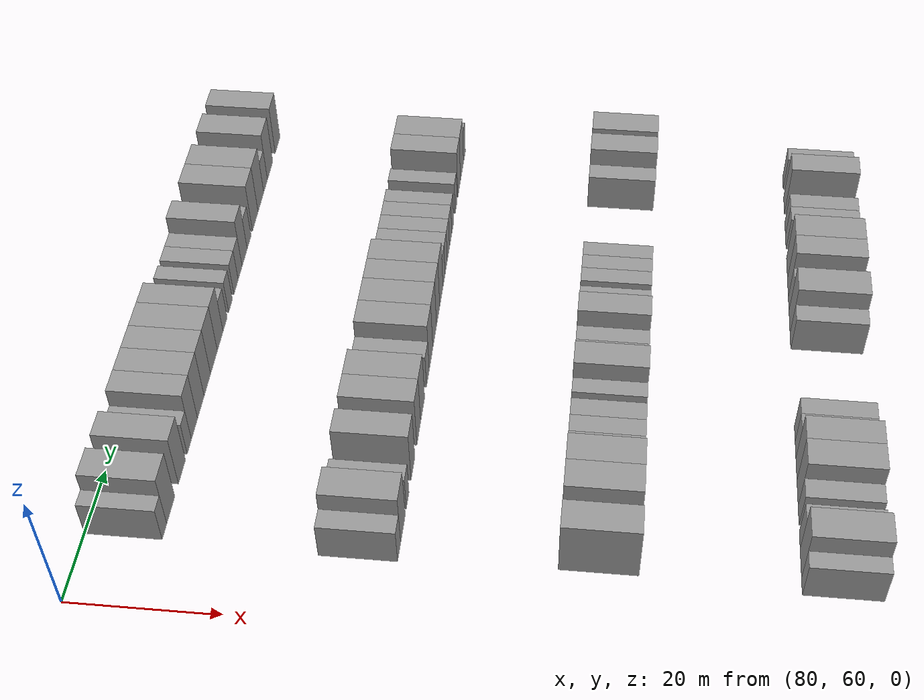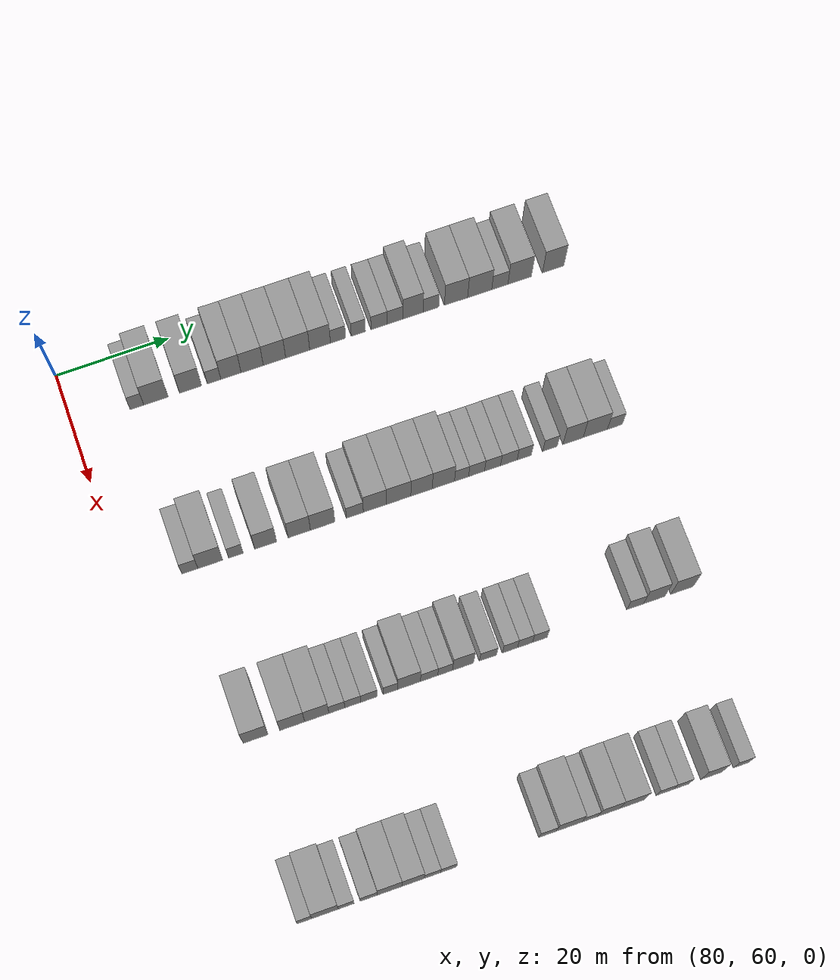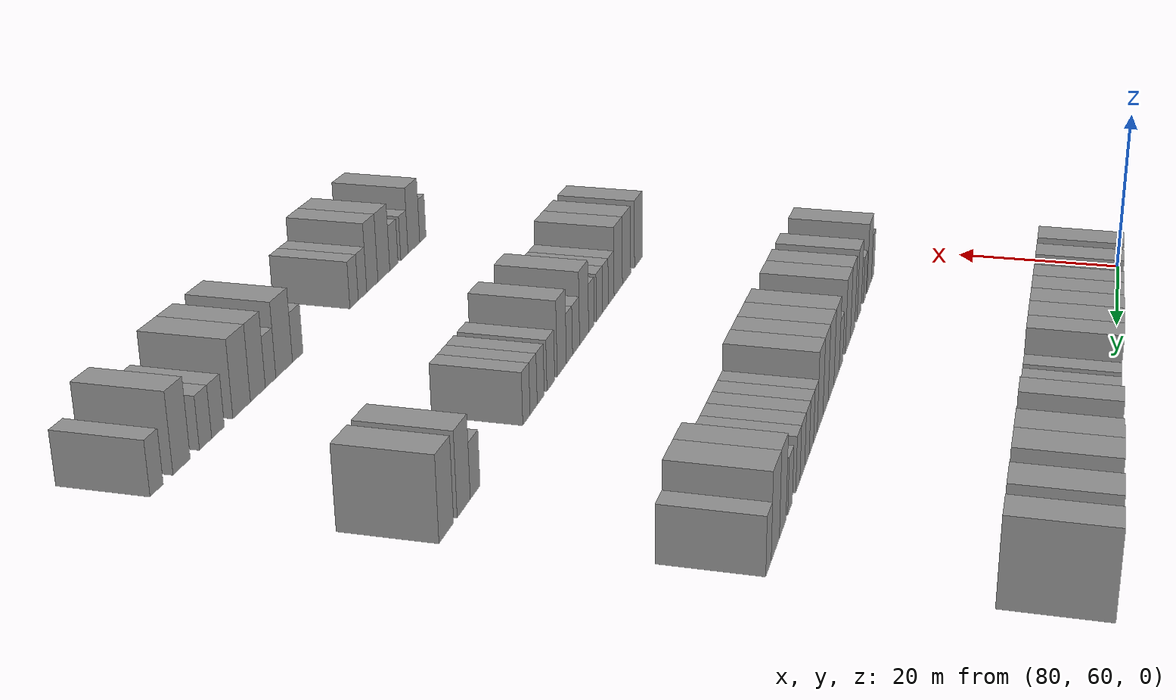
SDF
<sdf version="1.6">
 <world name="default">
  <model name="building_616">
   <static>1</static>
   <pose>85.0000 71.2811 0 0.000000 0.000000 0.000000</pose>
   <link name="link">
    <pose>0 0 3.00 0 0 0</pose>
    <collision name="collision"><geometry><box><size>10.0000 2.4149 6.0000</size></box></geometry></collision>
    <visual name="visual">
     <cast_shadows>0</cast_shadows>
     <geometry><box><size>10.0000 2.4149 6.0000</size></box></geometry>
     <material>
      <script>
       <uri>model://grey_wall/materials/scripts</uri>
       <uri>model://grey_wall/materials/textures</uri>
       <name>vrc/grey_wall</name>
      </script>
     </material>
    </visual>
   </link>
  </model>
  <model name="building_617">
   <static>1</static>
   <pose>85.0000 74.6415 0 0.000000 0.000000 0.000000</pose>
   <link name="link">
    <pose>0 0 4.50 0 0 0</pose>
    <collision name="collision"><geometry><box><size>10.0000 4.3059 9.0000</size></box></geometry></collision>
    <visual name="visual">
     <cast_shadows>0</cast_shadows>
     <geometry><box><size>10.0000 4.3059 9.0000</size></box></geometry>
     <material>
      <script>
       <uri>model://grey_wall/materials/scripts</uri>
       <uri>model://grey_wall/materials/textures</uri>
       <name>vrc/grey_wall</name>
      </script>
     </material>
    </visual>
   </link>
  </model>
  <model name="building_618">
   <static>1</static>
   <pose>85.0000 80.7590 0 0.000000 0.000000 0.000000</pose>
   <link name="link">
    <pose>0 0 4.50 0 0 0</pose>
    <collision name="collision"><geometry><box><size>10.0000 3.9290 9.0000</size></box></geometry></collision>
    <visual name="visual">
     <cast_shadows>0</cast_shadows>
     <geometry><box><size>10.0000 3.9290 9.0000</size></box></geometry>
     <material>
      <script>
       <uri>model://grey_wall/materials/scripts</uri>
       <uri>model://grey_wall/materials/textures</uri>
       <name>vrc/grey_wall</name>
      </script>
     </material>
    </visual>
   </link>
  </model>
  <model name="building_619">
   <static>1</static>
   <pose>85.0000 84.9312 0 0.000000 0.000000 0.000000</pose>
   <link name="link">
    <pose>0 0 3.00 0 0 0</pose>
    <collision name="collision"><geometry><box><size>10.0000 2.4154 6.0000</size></box></geometry></collision>
    <visual name="visual">
     <cast_shadows>0</cast_shadows>
     <geometry><box><size>10.0000 2.4154 6.0000</size></box></geometry>
     <material>
      <script>
       <uri>model://grey_wall/materials/scripts</uri>
       <uri>model://grey_wall/materials/textures</uri>
       <name>vrc/grey_wall</name>
      </script>
     </material>
    </visual>
   </link>
  </model>
  <model name="building_620">
   <static>1</static>
   <pose>85.0000 87.9405 0 0.000000 0.000000 0.000000</pose>
   <link name="link">
    <pose>0 0 4.50 0 0 0</pose>
    <collision name="collision"><geometry><box><size>10.0000 3.6033 9.0000</size></box></geometry></collision>
    <visual name="visual">
     <cast_shadows>0</cast_shadows>
     <geometry><box><size>10.0000 3.6033 9.0000</size></box></geometry>
     <material>
      <script>
       <uri>model://grey_wall/materials/scripts</uri>
       <uri>model://grey_wall/materials/textures</uri>
       <name>vrc/grey_wall</name>
      </script>
     </material>
    </visual>
   </link>
  </model>
  <model name="building_621">
   <static>1</static>
   <pose>85.0000 91.7207 0 0.000000 0.000000 0.000000</pose>
   <link name="link">
    <pose>0 0 4.50 0 0 0</pose>
    <collision name="collision"><geometry><box><size>10.0000 3.9570 9.0000</size></box></geometry></collision>
    <visual name="visual">
     <cast_shadows>0</cast_shadows>
     <geometry><box><size>10.0000 3.9570 9.0000</size></box></geometry>
     <material>
      <script>
       <uri>model://grey_wall/materials/scripts</uri>
       <uri>model://grey_wall/materials/textures</uri>
       <name>vrc/grey_wall</name>
      </script>
     </material>
    </visual>
   </link>
  </model>
  <model name="building_622">
   <static>1</static>
   <pose>85.0000 95.6966 0 0.000000 0.000000 0.000000</pose>
   <link name="link">
    <pose>0 0 4.50 0 0 0</pose>
    <collision name="collision"><geometry><box><size>10.0000 3.9948 9.0000</size></box></geometry></collision>
    <visual name="visual">
     <cast_shadows>0</cast_shadows>
     <geometry><box><size>10.0000 3.9948 9.0000</size></box></geometry>
     <material>
      <script>
       <uri>model://grey_wall/materials/scripts</uri>
       <uri>model://grey_wall/materials/textures</uri>
       <name>vrc/grey_wall</name>
      </script>
     </material>
    </visual>
   </link>
  </model>
  <model name="building_623">
   <static>1</static>
   <pose>85.0000 99.8428 0 0.000000 0.000000 0.000000</pose>
   <link name="link">
    <pose>0 0 4.50 0 0 0</pose>
    <collision name="collision"><geometry><box><size>10.0000 4.2977 9.0000</size></box></geometry></collision>
    <visual name="visual">
     <cast_shadows>0</cast_shadows>
     <geometry><box><size>10.0000 4.2977 9.0000</size></box></geometry>
     <material>
      <script>
       <uri>model://grey_wall/materials/scripts</uri>
       <uri>model://grey_wall/materials/textures</uri>
       <name>vrc/grey_wall</name>
      </script>
     </material>
    </visual>
   </link>
  </model>
  <model name="building_624">
   <static>1</static>
   <pose>85.0000 103.8436 0 0.000000 0.000000 0.000000</pose>
   <link name="link">
    <pose>0 0 4.50 0 0 0</pose>
    <collision name="collision"><geometry><box><size>10.0000 3.7039 9.0000</size></box></geometry></collision>
    <visual name="visual">
     <cast_shadows>0</cast_shadows>
     <geometry><box><size>10.0000 3.7039 9.0000</size></box></geometry>
     <material>
      <script>
       <uri>model://grey_wall/materials/scripts</uri>
       <uri>model://grey_wall/materials/textures</uri>
       <name>vrc/grey_wall</name>
      </script>
     </material>
    </visual>
   </link>
  </model>
  <model name="building_625">
   <static>1</static>
   <pose>85.0000 107.0661 0 0.000000 0.000000 0.000000</pose>
   <link name="link">
    <pose>0 0 3.00 0 0 0</pose>
    <collision name="collision"><geometry><box><size>10.0000 2.7411 6.0000</size></box></geometry></collision>
    <visual name="visual">
     <cast_shadows>0</cast_shadows>
     <geometry><box><size>10.0000 2.7411 6.0000</size></box></geometry>
     <material>
      <script>
       <uri>model://grey_wall/materials/scripts</uri>
       <uri>model://grey_wall/materials/textures</uri>
       <name>vrc/grey_wall</name>
      </script>
     </material>
    </visual>
   </link>
  </model>
  <model name="building_626">
   <static>1</static>
   <pose>85.0000 110.7178 0 0.000000 0.000000 0.000000</pose>
   <link name="link">
    <pose>0 0 3.00 0 0 0</pose>
    <collision name="collision"><geometry><box><size>10.0000 2.5623 6.0000</size></box></geometry></collision>
    <visual name="visual">
     <cast_shadows>0</cast_shadows>
     <geometry><box><size>10.0000 2.5623 6.0000</size></box></geometry>
     <material>
      <script>
       <uri>model://grey_wall/materials/scripts</uri>
       <uri>model://grey_wall/materials/textures</uri>
       <name>vrc/grey_wall</name>
      </script>
     </material>
    </visual>
   </link>
  </model>
  <model name="building_627">
   <static>1</static>
   <pose>85.0000 114.4735 0 0.000000 0.000000 0.000000</pose>
   <link name="link">
    <pose>0 0 3.00 0 0 0</pose>
    <collision name="collision"><geometry><box><size>10.0000 2.9490 6.0000</size></box></geometry></collision>
    <visual name="visual">
     <cast_shadows>0</cast_shadows>
     <geometry><box><size>10.0000 2.9490 6.0000</size></box></geometry>
     <material>
      <script>
       <uri>model://grey_wall/materials/scripts</uri>
       <uri>model://grey_wall/materials/textures</uri>
       <name>vrc/grey_wall</name>
      </script>
     </material>
    </visual>
   </link>
  </model>
  <model name="building_628">
   <static>1</static>
   <pose>85.0000 117.3416 0 0.000000 0.000000 0.000000</pose>
   <link name="link">
    <pose>0 0 3.00 0 0 0</pose>
    <collision name="collision"><geometry><box><size>10.0000 2.7871 6.0000</size></box></geometry></collision>
    <visual name="visual">
     <cast_shadows>0</cast_shadows>
     <geometry><box><size>10.0000 2.7871 6.0000</size></box></geometry>
     <material>
      <script>
       <uri>model://grey_wall/materials/scripts</uri>
       <uri>model://grey_wall/materials/textures</uri>
       <name>vrc/grey_wall</name>
      </script>
     </material>
    </visual>
   </link>
  </model>
  <model name="building_629">
   <static>1</static>
   <pose>85.0000 120.5587 0 0.000000 0.000000 0.000000</pose>
   <link name="link">
    <pose>0 0 4.50 0 0 0</pose>
    <collision name="collision"><geometry><box><size>10.0000 3.6473 9.0000</size></box></geometry></collision>
    <visual name="visual">
     <cast_shadows>0</cast_shadows>
     <geometry><box><size>10.0000 3.6473 9.0000</size></box></geometry>
     <material>
      <script>
       <uri>model://grey_wall/materials/scripts</uri>
       <uri>model://grey_wall/materials/textures</uri>
       <name>vrc/grey_wall</name>
      </script>
     </material>
    </visual>
   </link>
  </model>
  <model name="building_630">
   <static>1</static>
   <pose>85.0000 123.8173 0 0.000000 0.000000 0.000000</pose>
   <link name="link">
    <pose>0 0 3.00 0 0 0</pose>
    <collision name="collision"><geometry><box><size>10.0000 2.8698 6.0000</size></box></geometry></collision>
    <visual name="visual">
     <cast_shadows>0</cast_shadows>
     <geometry><box><size>10.0000 2.8698 6.0000</size></box></geometry>
     <material>
      <script>
       <uri>model://grey_wall/materials/scripts</uri>
       <uri>model://grey_wall/materials/textures</uri>
       <name>vrc/grey_wall</name>
      </script>
     </material>
    </visual>
   </link>
  </model>
  <model name="building_631">
   <static>1</static>
   <pose>85.0000 128.3548 0 0.000000 0.000000 0.000000</pose>
   <link name="link">
    <pose>0 0 4.50 0 0 0</pose>
    <collision name="collision"><geometry><box><size>10.0000 4.2053 9.0000</size></box></geometry></collision>
    <visual name="visual">
     <cast_shadows>0</cast_shadows>
     <geometry><box><size>10.0000 4.2053 9.0000</size></box></geometry>
     <material>
      <script>
       <uri>model://grey_wall/materials/scripts</uri>
       <uri>model://grey_wall/materials/textures</uri>
       <name>vrc/grey_wall</name>
      </script>
     </material>
    </visual>
   </link>
  </model>
  <model name="building_632">
   <static>1</static>
   <pose>85.0000 132.6540 0 0.000000 0.000000 0.000000</pose>
   <link name="link">
    <pose>0 0 4.50 0 0 0</pose>
    <collision name="collision"><geometry><box><size>10.0000 4.3931 9.0000</size></box></geometry></collision>
    <visual name="visual">
     <cast_shadows>0</cast_shadows>
     <geometry><box><size>10.0000 4.3931 9.0000</size></box></geometry>
     <material>
      <script>
       <uri>model://grey_wall/materials/scripts</uri>
       <uri>model://grey_wall/materials/textures</uri>
       <name>vrc/grey_wall</name>
      </script>
     </material>
    </visual>
   </link>
  </model>
  <model name="building_633">
   <static>1</static>
   <pose>85.0000 136.3234 0 0.000000 0.000000 0.000000</pose>
   <link name="link">
    <pose>0 0 3.00 0 0 0</pose>
    <collision name="collision"><geometry><box><size>10.0000 2.9456 6.0000</size></box></geometry></collision>
    <visual name="visual">
     <cast_shadows>0</cast_shadows>
     <geometry><box><size>10.0000 2.9456 6.0000</size></box></geometry>
     <material>
      <script>
       <uri>model://grey_wall/materials/scripts</uri>
       <uri>model://grey_wall/materials/textures</uri>
       <name>vrc/grey_wall</name>
      </script>
     </material>
    </visual>
   </link>
  </model>
  <model name="building_634">
   <static>1</static>
   <pose>85.0000 139.9516 0 0.000000 0.000000 0.000000</pose>
   <link name="link">
    <pose>0 0 4.50 0 0 0</pose>
    <collision name="collision"><geometry><box><size>10.0000 4.3108 9.0000</size></box></geometry></collision>
    <visual name="visual">
     <cast_shadows>0</cast_shadows>
     <geometry><box><size>10.0000 4.3108 9.0000</size></box></geometry>
     <material>
      <script>
       <uri>model://grey_wall/materials/scripts</uri>
       <uri>model://grey_wall/materials/textures</uri>
       <name>vrc/grey_wall</name>
      </script>
     </material>
    </visual>
   </link>
  </model>
  <model name="building_635">
   <static>1</static>
   <pose>85.0000 146.0807 0 0.000000 0.000000 0.000000</pose>
   <link name="link">
    <pose>0 0 4.50 0 0 0</pose>
    <collision name="collision"><geometry><box><size>10.0000 3.9475 9.0000</size></box></geometry></collision>
    <visual name="visual">
     <cast_shadows>0</cast_shadows>
     <geometry><box><size>10.0000 3.9475 9.0000</size></box></geometry>
     <material>
      <script>
       <uri>model://grey_wall/materials/scripts</uri>
       <uri>model://grey_wall/materials/textures</uri>
       <name>vrc/grey_wall</name>
      </script>
     </material>
    </visual>
   </link>
  </model>
  <model name="building_849">
   <static>1</static>
   <pose>115.0000 70.9228 0 0.000000 0.000000 0.000000</pose>
   <link name="link">
    <pose>0 0 3.00 0 0 0</pose>
    <collision name="collision"><geometry><box><size>10.0000 2.7869 6.0000</size></box></geometry></collision>
    <visual name="visual">
     <cast_shadows>0</cast_shadows>
     <geometry><box><size>10.0000 2.7869 6.0000</size></box></geometry>
     <material>
      <script>
       <uri>model://grey_wall/materials/scripts</uri>
       <uri>model://grey_wall/materials/textures</uri>
       <name>vrc/grey_wall</name>
      </script>
     </material>
    </visual>
   </link>
  </model>
  <model name="building_850">
   <static>1</static>
   <pose>115.0000 74.4618 0 0.000000 0.000000 0.000000</pose>
   <link name="link">
    <pose>0 0 4.50 0 0 0</pose>
    <collision name="collision"><geometry><box><size>10.0000 4.2910 9.0000</size></box></geometry></collision>
    <visual name="visual">
     <cast_shadows>0</cast_shadows>
     <geometry><box><size>10.0000 4.2910 9.0000</size></box></geometry>
     <material>
      <script>
       <uri>model://grey_wall/materials/scripts</uri>
       <uri>model://grey_wall/materials/textures</uri>
       <name>vrc/grey_wall</name>
      </script>
     </material>
    </visual>
   </link>
  </model>
  <model name="building_851">
   <static>1</static>
   <pose>115.0000 78.8880 0 0.000000 0.000000 0.000000</pose>
   <link name="link">
    <pose>0 0 3.00 0 0 0</pose>
    <collision name="collision"><geometry><box><size>10.0000 2.5614 6.0000</size></box></geometry></collision>
    <visual name="visual">
     <cast_shadows>0</cast_shadows>
     <geometry><box><size>10.0000 2.5614 6.0000</size></box></geometry>
     <material>
      <script>
       <uri>model://grey_wall/materials/scripts</uri>
       <uri>model://grey_wall/materials/textures</uri>
       <name>vrc/grey_wall</name>
      </script>
     </material>
    </visual>
   </link>
  </model>
  <model name="building_852">
   <static>1</static>
   <pose>115.0000 84.0774 0 0.000000 0.000000 0.000000</pose>
   <link name="link">
    <pose>0 0 4.50 0 0 0</pose>
    <collision name="collision"><geometry><box><size>10.0000 3.8174 9.0000</size></box></geometry></collision>
    <visual name="visual">
     <cast_shadows>0</cast_shadows>
     <geometry><box><size>10.0000 3.8174 9.0000</size></box></geometry>
     <material>
      <script>
       <uri>model://grey_wall/materials/scripts</uri>
       <uri>model://grey_wall/materials/textures</uri>
       <name>vrc/grey_wall</name>
      </script>
     </material>
    </visual>
   </link>
  </model>
  <model name="building_853">
   <static>1</static>
   <pose>115.0000 89.9340 0 0.000000 0.000000 0.000000</pose>
   <link name="link">
    <pose>0 0 4.50 0 0 0</pose>
    <collision name="collision"><geometry><box><size>10.0000 3.8958 9.0000</size></box></geometry></collision>
    <visual name="visual">
     <cast_shadows>0</cast_shadows>
     <geometry><box><size>10.0000 3.8958 9.0000</size></box></geometry>
     <material>
      <script>
       <uri>model://grey_wall/materials/scripts</uri>
       <uri>model://grey_wall/materials/textures</uri>
       <name>vrc/grey_wall</name>
      </script>
     </material>
    </visual>
   </link>
  </model>
  <model name="building_854">
   <static>1</static>
   <pose>115.0000 94.0223 0 0.000000 0.000000 0.000000</pose>
   <link name="link">
    <pose>0 0 4.50 0 0 0</pose>
    <collision name="collision"><geometry><box><size>10.0000 4.2808 9.0000</size></box></geometry></collision>
    <visual name="visual">
     <cast_shadows>0</cast_shadows>
     <geometry><box><size>10.0000 4.2808 9.0000</size></box></geometry>
     <material>
      <script>
       <uri>model://grey_wall/materials/scripts</uri>
       <uri>model://grey_wall/materials/textures</uri>
       <name>vrc/grey_wall</name>
      </script>
     </material>
    </visual>
   </link>
  </model>
  <model name="building_855">
   <static>1</static>
   <pose>115.0000 99.6557 0 0.000000 0.000000 0.000000</pose>
   <link name="link">
    <pose>0 0 3.00 0 0 0</pose>
    <collision name="collision"><geometry><box><size>10.0000 2.9859 6.0000</size></box></geometry></collision>
    <visual name="visual">
     <cast_shadows>0</cast_shadows>
     <geometry><box><size>10.0000 2.9859 6.0000</size></box></geometry>
     <material>
      <script>
       <uri>model://grey_wall/materials/scripts</uri>
       <uri>model://grey_wall/materials/textures</uri>
       <name>vrc/grey_wall</name>
      </script>
     </material>
    </visual>
   </link>
  </model>
  <model name="building_856">
   <static>1</static>
   <pose>115.0000 103.1845 0 0.000000 0.000000 0.000000</pose>
   <link name="link">
    <pose>0 0 4.50 0 0 0</pose>
    <collision name="collision"><geometry><box><size>10.0000 4.0718 9.0000</size></box></geometry></collision>
    <visual name="visual">
     <cast_shadows>0</cast_shadows>
     <geometry><box><size>10.0000 4.0718 9.0000</size></box></geometry>
     <material>
      <script>
       <uri>model://grey_wall/materials/scripts</uri>
       <uri>model://grey_wall/materials/textures</uri>
       <name>vrc/grey_wall</name>
      </script>
     </material>
    </visual>
   </link>
  </model>
  <model name="building_857">
   <static>1</static>
   <pose>115.0000 107.3602 0 0.000000 0.000000 0.000000</pose>
   <link name="link">
    <pose>0 0 4.50 0 0 0</pose>
    <collision name="collision"><geometry><box><size>10.0000 4.2795 9.0000</size></box></geometry></collision>
    <visual name="visual">
     <cast_shadows>0</cast_shadows>
     <geometry><box><size>10.0000 4.2795 9.0000</size></box></geometry>
     <material>
      <script>
       <uri>model://grey_wall/materials/scripts</uri>
       <uri>model://grey_wall/materials/textures</uri>
       <name>vrc/grey_wall</name>
      </script>
     </material>
    </visual>
   </link>
  </model>
  <model name="building_858">
   <static>1</static>
   <pose>115.0000 111.3914 0 0.000000 0.000000 0.000000</pose>
   <link name="link">
    <pose>0 0 4.50 0 0 0</pose>
    <collision name="collision"><geometry><box><size>10.0000 3.7830 9.0000</size></box></geometry></collision>
    <visual name="visual">
     <cast_shadows>0</cast_shadows>
     <geometry><box><size>10.0000 3.7830 9.0000</size></box></geometry>
     <material>
      <script>
       <uri>model://grey_wall/materials/scripts</uri>
       <uri>model://grey_wall/materials/textures</uri>
       <name>vrc/grey_wall</name>
      </script>
     </material>
    </visual>
   </link>
  </model>
  <model name="building_859">
   <static>1</static>
   <pose>115.0000 115.2503 0 0.000000 0.000000 0.000000</pose>
   <link name="link">
    <pose>0 0 4.50 0 0 0</pose>
    <collision name="collision"><geometry><box><size>10.0000 3.9346 9.0000</size></box></geometry></collision>
    <visual name="visual">
     <cast_shadows>0</cast_shadows>
     <geometry><box><size>10.0000 3.9346 9.0000</size></box></geometry>
     <material>
      <script>
       <uri>model://grey_wall/materials/scripts</uri>
       <uri>model://grey_wall/materials/textures</uri>
       <name>vrc/grey_wall</name>
      </script>
     </material>
    </visual>
   </link>
  </model>
  <model name="building_860">
   <static>1</static>
   <pose>115.0000 118.4764 0 0.000000 0.000000 0.000000</pose>
   <link name="link">
    <pose>0 0 3.00 0 0 0</pose>
    <collision name="collision"><geometry><box><size>10.0000 2.5176 6.0000</size></box></geometry></collision>
    <visual name="visual">
     <cast_shadows>0</cast_shadows>
     <geometry><box><size>10.0000 2.5176 6.0000</size></box></geometry>
     <material>
      <script>
       <uri>model://grey_wall/materials/scripts</uri>
       <uri>model://grey_wall/materials/textures</uri>
       <name>vrc/grey_wall</name>
      </script>
     </material>
    </visual>
   </link>
  </model>
  <model name="building_861">
   <static>1</static>
   <pose>115.0000 121.1455 0 0.000000 0.000000 0.000000</pose>
   <link name="link">
    <pose>0 0 3.00 0 0 0</pose>
    <collision name="collision"><geometry><box><size>10.0000 2.8207 6.0000</size></box></geometry></collision>
    <visual name="visual">
     <cast_shadows>0</cast_shadows>
     <geometry><box><size>10.0000 2.8207 6.0000</size></box></geometry>
     <material>
      <script>
       <uri>model://grey_wall/materials/scripts</uri>
       <uri>model://grey_wall/materials/textures</uri>
       <name>vrc/grey_wall</name>
      </script>
     </material>
    </visual>
   </link>
  </model>
  <model name="building_862">
   <static>1</static>
   <pose>115.0000 123.9806 0 0.000000 0.000000 0.000000</pose>
   <link name="link">
    <pose>0 0 3.00 0 0 0</pose>
    <collision name="collision"><geometry><box><size>10.0000 2.8494 6.0000</size></box></geometry></collision>
    <visual name="visual">
     <cast_shadows>0</cast_shadows>
     <geometry><box><size>10.0000 2.8494 6.0000</size></box></geometry>
     <material>
      <script>
       <uri>model://grey_wall/materials/scripts</uri>
       <uri>model://grey_wall/materials/textures</uri>
       <name>vrc/grey_wall</name>
      </script>
     </material>
    </visual>
   </link>
  </model>
  <model name="building_863">
   <static>1</static>
   <pose>115.0000 126.8814 0 0.000000 0.000000 0.000000</pose>
   <link name="link">
    <pose>0 0 3.00 0 0 0</pose>
    <collision name="collision"><geometry><box><size>10.0000 2.9522 6.0000</size></box></geometry></collision>
    <visual name="visual">
     <cast_shadows>0</cast_shadows>
     <geometry><box><size>10.0000 2.9522 6.0000</size></box></geometry>
     <material>
      <script>
       <uri>model://grey_wall/materials/scripts</uri>
       <uri>model://grey_wall/materials/textures</uri>
       <name>vrc/grey_wall</name>
      </script>
     </material>
    </visual>
   </link>
  </model>
  <model name="building_864">
   <static>1</static>
   <pose>115.0000 129.6280 0 0.000000 0.000000 0.000000</pose>
   <link name="link">
    <pose>0 0 3.00 0 0 0</pose>
    <collision name="collision"><geometry><box><size>10.0000 2.5409 6.0000</size></box></geometry></collision>
    <visual name="visual">
     <cast_shadows>0</cast_shadows>
     <geometry><box><size>10.0000 2.5409 6.0000</size></box></geometry>
     <material>
      <script>
       <uri>model://grey_wall/materials/scripts</uri>
       <uri>model://grey_wall/materials/textures</uri>
       <name>vrc/grey_wall</name>
      </script>
     </material>
    </visual>
   </link>
  </model>
  <model name="building_865">
   <static>1</static>
   <pose>115.0000 134.2142 0 0.000000 0.000000 0.000000</pose>
   <link name="link">
    <pose>0 0 3.00 0 0 0</pose>
    <collision name="collision"><geometry><box><size>10.0000 2.6315 6.0000</size></box></geometry></collision>
    <visual name="visual">
     <cast_shadows>0</cast_shadows>
     <geometry><box><size>10.0000 2.6315 6.0000</size></box></geometry>
     <material>
      <script>
       <uri>model://grey_wall/materials/scripts</uri>
       <uri>model://grey_wall/materials/textures</uri>
       <name>vrc/grey_wall</name>
      </script>
     </material>
    </visual>
   </link>
  </model>
  <model name="building_866">
   <static>1</static>
   <pose>115.0000 138.3422 0 0.000000 0.000000 0.000000</pose>
   <link name="link">
    <pose>0 0 4.50 0 0 0</pose>
    <collision name="collision"><geometry><box><size>10.0000 3.6245 9.0000</size></box></geometry></collision>
    <visual name="visual">
     <cast_shadows>0</cast_shadows>
     <geometry><box><size>10.0000 3.6245 9.0000</size></box></geometry>
     <material>
      <script>
       <uri>model://grey_wall/materials/scripts</uri>
       <uri>model://grey_wall/materials/textures</uri>
       <name>vrc/grey_wall</name>
      </script>
     </material>
    </visual>
   </link>
  </model>
  <model name="building_867">
   <static>1</static>
   <pose>115.0000 142.3300 0 0.000000 0.000000 0.000000</pose>
   <link name="link">
    <pose>0 0 4.50 0 0 0</pose>
    <collision name="collision"><geometry><box><size>10.0000 4.3512 9.0000</size></box></geometry></collision>
    <visual name="visual">
     <cast_shadows>0</cast_shadows>
     <geometry><box><size>10.0000 4.3512 9.0000</size></box></geometry>
     <material>
      <script>
       <uri>model://grey_wall/materials/scripts</uri>
       <uri>model://grey_wall/materials/textures</uri>
       <name>vrc/grey_wall</name>
      </script>
     </material>
    </visual>
   </link>
  </model>
  <model name="building_868">
   <static>1</static>
   <pose>115.0000 145.8648 0 0.000000 0.000000 0.000000</pose>
   <link name="link">
    <pose>0 0 3.00 0 0 0</pose>
    <collision name="collision"><geometry><box><size>10.0000 2.7183 6.0000</size></box></geometry></collision>
    <visual name="visual">
     <cast_shadows>0</cast_shadows>
     <geometry><box><size>10.0000 2.7183 6.0000</size></box></geometry>
     <material>
      <script>
       <uri>model://grey_wall/materials/scripts</uri>
       <uri>model://grey_wall/materials/textures</uri>
       <name>vrc/grey_wall</name>
      </script>
     </material>
    </visual>
   </link>
  </model>
  <model name="building_1089">
   <static>1</static>
   <pose>145.0000 72.3151 0 0.000000 0.000000 0.000000</pose>
   <link name="link">
    <pose>0 0 4.50 0 0 0</pose>
    <collision name="collision"><geometry><box><size>10.0000 4.2190 9.0000</size></box></geometry></collision>
    <visual name="visual">
     <cast_shadows>0</cast_shadows>
     <geometry><box><size>10.0000 4.2190 9.0000</size></box></geometry>
     <material>
      <script>
       <uri>model://grey_wall/materials/scripts</uri>
       <uri>model://grey_wall/materials/textures</uri>
       <name>vrc/grey_wall</name>
      </script>
     </material>
    </visual>
   </link>
  </model>
  <model name="building_1090">
   <static>1</static>
   <pose>145.0000 78.5475 0 0.000000 0.000000 0.000000</pose>
   <link name="link">
    <pose>0 0 4.50 0 0 0</pose>
    <collision name="collision"><geometry><box><size>10.0000 4.2457 9.0000</size></box></geometry></collision>
    <visual name="visual">
     <cast_shadows>0</cast_shadows>
     <geometry><box><size>10.0000 4.2457 9.0000</size></box></geometry>
     <material>
      <script>
       <uri>model://grey_wall/materials/scripts</uri>
       <uri>model://grey_wall/materials/textures</uri>
       <name>vrc/grey_wall</name>
      </script>
     </material>
    </visual>
   </link>
  </model>
  <model name="building_1091">
   <static>1</static>
   <pose>145.0000 82.7354 0 0.000000 0.000000 0.000000</pose>
   <link name="link">
    <pose>0 0 4.50 0 0 0</pose>
    <collision name="collision"><geometry><box><size>10.0000 4.1303 9.0000</size></box></geometry></collision>
    <visual name="visual">
     <cast_shadows>0</cast_shadows>
     <geometry><box><size>10.0000 4.1303 9.0000</size></box></geometry>
     <material>
      <script>
       <uri>model://grey_wall/materials/scripts</uri>
       <uri>model://grey_wall/materials/textures</uri>
       <name>vrc/grey_wall</name>
      </script>
     </material>
    </visual>
   </link>
  </model>
  <model name="building_1092">
   <static>1</static>
   <pose>145.0000 86.1641 0 0.000000 0.000000 0.000000</pose>
   <link name="link">
    <pose>0 0 3.00 0 0 0</pose>
    <collision name="collision"><geometry><box><size>10.0000 2.7271 6.0000</size></box></geometry></collision>
    <visual name="visual">
     <cast_shadows>0</cast_shadows>
     <geometry><box><size>10.0000 2.7271 6.0000</size></box></geometry>
     <material>
      <script>
       <uri>model://grey_wall/materials/scripts</uri>
       <uri>model://grey_wall/materials/textures</uri>
       <name>vrc/grey_wall</name>
      </script>
     </material>
    </visual>
   </link>
  </model>
  <model name="building_1093">
   <static>1</static>
   <pose>145.0000 88.8950 0 0.000000 0.000000 0.000000</pose>
   <link name="link">
    <pose>0 0 3.00 0 0 0</pose>
    <collision name="collision"><geometry><box><size>10.0000 2.7347 6.0000</size></box></geometry></collision>
    <visual name="visual">
     <cast_shadows>0</cast_shadows>
     <geometry><box><size>10.0000 2.7347 6.0000</size></box></geometry>
     <material>
      <script>
       <uri>model://grey_wall/materials/scripts</uri>
       <uri>model://grey_wall/materials/textures</uri>
       <name>vrc/grey_wall</name>
      </script>
     </material>
    </visual>
   </link>
  </model>
  <model name="building_1094">
   <static>1</static>
   <pose>145.0000 91.6670 0 0.000000 0.000000 0.000000</pose>
   <link name="link">
    <pose>0 0 3.00 0 0 0</pose>
    <collision name="collision"><geometry><box><size>10.0000 2.8094 6.0000</size></box></geometry></collision>
    <visual name="visual">
     <cast_shadows>0</cast_shadows>
     <geometry><box><size>10.0000 2.8094 6.0000</size></box></geometry>
     <material>
      <script>
       <uri>model://grey_wall/materials/scripts</uri>
       <uri>model://grey_wall/materials/textures</uri>
       <name>vrc/grey_wall</name>
      </script>
     </material>
    </visual>
   </link>
  </model>
  <model name="building_1095">
   <static>1</static>
   <pose>145.0000 95.3277 0 0.000000 0.000000 0.000000</pose>
   <link name="link">
    <pose>0 0 3.00 0 0 0</pose>
    <collision name="collision"><geometry><box><size>10.0000 2.5120 6.0000</size></box></geometry></collision>
    <visual name="visual">
     <cast_shadows>0</cast_shadows>
     <geometry><box><size>10.0000 2.5120 6.0000</size></box></geometry>
     <material>
      <script>
       <uri>model://grey_wall/materials/scripts</uri>
       <uri>model://grey_wall/materials/textures</uri>
       <name>vrc/grey_wall</name>
      </script>
     </material>
    </visual>
   </link>
  </model>
  <model name="building_1096">
   <static>1</static>
   <pose>145.0000 98.5385 0 0.000000 0.000000 0.000000</pose>
   <link name="link">
    <pose>0 0 4.50 0 0 0</pose>
    <collision name="collision"><geometry><box><size>10.0000 3.9097 9.0000</size></box></geometry></collision>
    <visual name="visual">
     <cast_shadows>0</cast_shadows>
     <geometry><box><size>10.0000 3.9097 9.0000</size></box></geometry>
     <material>
      <script>
       <uri>model://grey_wall/materials/scripts</uri>
       <uri>model://grey_wall/materials/textures</uri>
       <name>vrc/grey_wall</name>
      </script>
     </material>
    </visual>
   </link>
  </model>
  <model name="building_1097">
   <static>1</static>
   <pose>145.0000 101.9868 0 0.000000 0.000000 0.000000</pose>
   <link name="link">
    <pose>0 0 3.00 0 0 0</pose>
    <collision name="collision"><geometry><box><size>10.0000 2.9868 6.0000</size></box></geometry></collision>
    <visual name="visual">
     <cast_shadows>0</cast_shadows>
     <geometry><box><size>10.0000 2.9868 6.0000</size></box></geometry>
     <material>
      <script>
       <uri>model://grey_wall/materials/scripts</uri>
       <uri>model://grey_wall/materials/textures</uri>
       <name>vrc/grey_wall</name>
      </script>
     </material>
    </visual>
   </link>
  </model>
  <model name="building_1098">
   <static>1</static>
   <pose>145.0000 104.7466 0 0.000000 0.000000 0.000000</pose>
   <link name="link">
    <pose>0 0 3.00 0 0 0</pose>
    <collision name="collision"><geometry><box><size>10.0000 2.5329 6.0000</size></box></geometry></collision>
    <visual name="visual">
     <cast_shadows>0</cast_shadows>
     <geometry><box><size>10.0000 2.5329 6.0000</size></box></geometry>
     <material>
      <script>
       <uri>model://grey_wall/materials/scripts</uri>
       <uri>model://grey_wall/materials/textures</uri>
       <name>vrc/grey_wall</name>
      </script>
     </material>
    </visual>
   </link>
  </model>
  <model name="building_1099">
   <static>1</static>
   <pose>145.0000 107.8368 0 0.000000 0.000000 0.000000</pose>
   <link name="link">
    <pose>0 0 4.50 0 0 0</pose>
    <collision name="collision"><geometry><box><size>10.0000 3.6474 9.0000</size></box></geometry></collision>
    <visual name="visual">
     <cast_shadows>0</cast_shadows>
     <geometry><box><size>10.0000 3.6474 9.0000</size></box></geometry>
     <material>
      <script>
       <uri>model://grey_wall/materials/scripts</uri>
       <uri>model://grey_wall/materials/textures</uri>
       <name>vrc/grey_wall</name>
      </script>
     </material>
    </visual>
   </link>
  </model>
  <model name="building_1100">
   <static>1</static>
   <pose>145.0000 112.1522 0 0.000000 0.000000 0.000000</pose>
   <link name="link">
    <pose>0 0 3.00 0 0 0</pose>
    <collision name="collision"><geometry><box><size>10.0000 2.9833 6.0000</size></box></geometry></collision>
    <visual name="visual">
     <cast_shadows>0</cast_shadows>
     <geometry><box><size>10.0000 2.9833 6.0000</size></box></geometry>
     <material>
      <script>
       <uri>model://grey_wall/materials/scripts</uri>
       <uri>model://grey_wall/materials/textures</uri>
       <name>vrc/grey_wall</name>
      </script>
     </material>
    </visual>
   </link>
  </model>
  <model name="building_1101">
   <static>1</static>
   <pose>145.0000 115.9627 0 0.000000 0.000000 0.000000</pose>
   <link name="link">
    <pose>0 0 3.00 0 0 0</pose>
    <collision name="collision"><geometry><box><size>10.0000 2.6378 6.0000</size></box></geometry></collision>
    <visual name="visual">
     <cast_shadows>0</cast_shadows>
     <geometry><box><size>10.0000 2.6378 6.0000</size></box></geometry>
     <material>
      <script>
       <uri>model://grey_wall/materials/scripts</uri>
       <uri>model://grey_wall/materials/textures</uri>
       <name>vrc/grey_wall</name>
      </script>
     </material>
    </visual>
   </link>
  </model>
  <model name="building_1102">
   <static>1</static>
   <pose>145.0000 118.5755 0 0.000000 0.000000 0.000000</pose>
   <link name="link">
    <pose>0 0 3.00 0 0 0</pose>
    <collision name="collision"><geometry><box><size>10.0000 2.5877 6.0000</size></box></geometry></collision>
    <visual name="visual">
     <cast_shadows>0</cast_shadows>
     <geometry><box><size>10.0000 2.5877 6.0000</size></box></geometry>
     <material>
      <script>
       <uri>model://grey_wall/materials/scripts</uri>
       <uri>model://grey_wall/materials/textures</uri>
       <name>vrc/grey_wall</name>
      </script>
     </material>
    </visual>
   </link>
  </model>
  <model name="building_1103">
   <static>1</static>
   <pose>145.0000 121.1624 0 0.000000 0.000000 0.000000</pose>
   <link name="link">
    <pose>0 0 3.00 0 0 0</pose>
    <collision name="collision"><geometry><box><size>10.0000 2.5861 6.0000</size></box></geometry></collision>
    <visual name="visual">
     <cast_shadows>0</cast_shadows>
     <geometry><box><size>10.0000 2.5861 6.0000</size></box></geometry>
     <material>
      <script>
       <uri>model://grey_wall/materials/scripts</uri>
       <uri>model://grey_wall/materials/textures</uri>
       <name>vrc/grey_wall</name>
      </script>
     </material>
    </visual>
   </link>
  </model>
  <model name="building_1104">
   <static>1</static>
   <pose>145.0000 137.8683 0 0.000000 0.000000 0.000000</pose>
   <link name="link">
    <pose>0 0 3.00 0 0 0</pose>
    <collision name="collision"><geometry><box><size>10.0000 2.9419 6.0000</size></box></geometry></collision>
    <visual name="visual">
     <cast_shadows>0</cast_shadows>
     <geometry><box><size>10.0000 2.9419 6.0000</size></box></geometry>
     <material>
      <script>
       <uri>model://grey_wall/materials/scripts</uri>
       <uri>model://grey_wall/materials/textures</uri>
       <name>vrc/grey_wall</name>
      </script>
     </material>
    </visual>
   </link>
  </model>
  <model name="building_1105">
   <static>1</static>
   <pose>145.0000 141.2345 0 0.000000 0.000000 0.000000</pose>
   <link name="link">
    <pose>0 0 4.50 0 0 0</pose>
    <collision name="collision"><geometry><box><size>10.0000 3.7904 9.0000</size></box></geometry></collision>
    <visual name="visual">
     <cast_shadows>0</cast_shadows>
     <geometry><box><size>10.0000 3.7904 9.0000</size></box></geometry>
     <material>
      <script>
       <uri>model://grey_wall/materials/scripts</uri>
       <uri>model://grey_wall/materials/textures</uri>
       <name>vrc/grey_wall</name>
      </script>
     </material>
    </visual>
   </link>
  </model>
  <model name="building_1106">
   <static>1</static>
   <pose>145.0000 146.1477 0 0.000000 0.000000 0.000000</pose>
   <link name="link">
    <pose>0 0 4.50 0 0 0</pose>
    <collision name="collision"><geometry><box><size>10.0000 4.0360 9.0000</size></box></geometry></collision>
    <visual name="visual">
     <cast_shadows>0</cast_shadows>
     <geometry><box><size>10.0000 4.0360 9.0000</size></box></geometry>
     <material>
      <script>
       <uri>model://grey_wall/materials/scripts</uri>
       <uri>model://grey_wall/materials/textures</uri>
       <name>vrc/grey_wall</name>
      </script>
     </material>
    </visual>
   </link>
  </model>
  <model name="building_1319">
   <static>1</static>
   <pose>175.0000 70.4771 0 0.000000 0.000000 0.000000</pose>
   <link name="link">
    <pose>0 0 3.00 0 0 0</pose>
    <collision name="collision"><geometry><box><size>10.0000 2.4133 6.0000</size></box></geometry></collision>
    <visual name="visual">
     <cast_shadows>0</cast_shadows>
     <geometry><box><size>10.0000 2.4133 6.0000</size></box></geometry>
     <material>
      <script>
       <uri>model://grey_wall/materials/scripts</uri>
       <uri>model://grey_wall/materials/textures</uri>
       <name>vrc/grey_wall</name>
      </script>
     </material>
    </visual>
   </link>
  </model>
  <model name="building_1320">
   <static>1</static>
   <pose>175.0000 73.8762 0 0.000000 0.000000 0.000000</pose>
   <link name="link">
    <pose>0 0 4.50 0 0 0</pose>
    <collision name="collision"><geometry><box><size>10.0000 4.3850 9.0000</size></box></geometry></collision>
    <visual name="visual">
     <cast_shadows>0</cast_shadows>
     <geometry><box><size>10.0000 4.3850 9.0000</size></box></geometry>
     <material>
      <script>
       <uri>model://grey_wall/materials/scripts</uri>
       <uri>model://grey_wall/materials/textures</uri>
       <name>vrc/grey_wall</name>
      </script>
     </material>
    </visual>
   </link>
  </model>
  <model name="building_1321">
   <static>1</static>
   <pose>175.0000 77.3866 0 0.000000 0.000000 0.000000</pose>
   <link name="link">
    <pose>0 0 3.00 0 0 0</pose>
    <collision name="collision"><geometry><box><size>10.0000 2.6357 6.0000</size></box></geometry></collision>
    <visual name="visual">
     <cast_shadows>0</cast_shadows>
     <geometry><box><size>10.0000 2.6357 6.0000</size></box></geometry>
     <material>
      <script>
       <uri>model://grey_wall/materials/scripts</uri>
       <uri>model://grey_wall/materials/textures</uri>
       <name>vrc/grey_wall</name>
      </script>
     </material>
    </visual>
   </link>
  </model>
  <model name="building_1322">
   <static>1</static>
   <pose>175.0000 81.1559 0 0.000000 0.000000 0.000000</pose>
   <link name="link">
    <pose>0 0 3.00 0 0 0</pose>
    <collision name="collision"><geometry><box><size>10.0000 2.9029 6.0000</size></box></geometry></collision>
    <visual name="visual">
     <cast_shadows>0</cast_shadows>
     <geometry><box><size>10.0000 2.9029 6.0000</size></box></geometry>
     <material>
      <script>
       <uri>model://grey_wall/materials/scripts</uri>
       <uri>model://grey_wall/materials/textures</uri>
       <name>vrc/grey_wall</name>
      </script>
     </material>
    </visual>
   </link>
  </model>
  <model name="building_1323">
   <static>1</static>
   <pose>175.0000 84.6501 0 0.000000 0.000000 0.000000</pose>
   <link name="link">
    <pose>0 0 4.50 0 0 0</pose>
    <collision name="collision"><geometry><box><size>10.0000 4.0855 9.0000</size></box></geometry></collision>
    <visual name="visual">
     <cast_shadows>0</cast_shadows>
     <geometry><box><size>10.0000 4.0855 9.0000</size></box></geometry>
     <material>
      <script>
       <uri>model://grey_wall/materials/scripts</uri>
       <uri>model://grey_wall/materials/textures</uri>
       <name>vrc/grey_wall</name>
      </script>
     </material>
    </visual>
   </link>
  </model>
  <model name="building_1324">
   <static>1</static>
   <pose>175.0000 88.5554 0 0.000000 0.000000 0.000000</pose>
   <link name="link">
    <pose>0 0 4.50 0 0 0</pose>
    <collision name="collision"><geometry><box><size>10.0000 3.7250 9.0000</size></box></geometry></collision>
    <visual name="visual">
     <cast_shadows>0</cast_shadows>
     <geometry><box><size>10.0000 3.7250 9.0000</size></box></geometry>
     <material>
      <script>
       <uri>model://grey_wall/materials/scripts</uri>
       <uri>model://grey_wall/materials/textures</uri>
       <name>vrc/grey_wall</name>
      </script>
     </material>
    </visual>
   </link>
  </model>
  <model name="building_1325">
   <static>1</static>
   <pose>175.0000 91.7970 0 0.000000 0.000000 0.000000</pose>
   <link name="link">
    <pose>0 0 3.00 0 0 0</pose>
    <collision name="collision"><geometry><box><size>10.0000 2.7583 6.0000</size></box></geometry></collision>
    <visual name="visual">
     <cast_shadows>0</cast_shadows>
     <geometry><box><size>10.0000 2.7583 6.0000</size></box></geometry>
     <material>
      <script>
       <uri>model://grey_wall/materials/scripts</uri>
       <uri>model://grey_wall/materials/textures</uri>
       <name>vrc/grey_wall</name>
      </script>
     </material>
    </visual>
   </link>
  </model>
  <model name="building_1326">
   <static>1</static>
   <pose>175.0000 94.5214 0 0.000000 0.000000 0.000000</pose>
   <link name="link">
    <pose>0 0 3.00 0 0 0</pose>
    <collision name="collision"><geometry><box><size>10.0000 2.6905 6.0000</size></box></geometry></collision>
    <visual name="visual">
     <cast_shadows>0</cast_shadows>
     <geometry><box><size>10.0000 2.6905 6.0000</size></box></geometry>
     <material>
      <script>
       <uri>model://grey_wall/materials/scripts</uri>
       <uri>model://grey_wall/materials/textures</uri>
       <name>vrc/grey_wall</name>
      </script>
     </material>
    </visual>
   </link>
  </model>
  <model name="building_1327">
   <static>1</static>
   <pose>175.0000 111.2219 0 0.000000 0.000000 0.000000</pose>
   <link name="link">
    <pose>0 0 3.00 0 0 0</pose>
    <collision name="collision"><geometry><box><size>10.0000 2.9035 6.0000</size></box></geometry></collision>
    <visual name="visual">
     <cast_shadows>0</cast_shadows>
     <geometry><box><size>10.0000 2.9035 6.0000</size></box></geometry>
     <material>
      <script>
       <uri>model://grey_wall/materials/scripts</uri>
       <uri>model://grey_wall/materials/textures</uri>
       <name>vrc/grey_wall</name>
      </script>
     </material>
    </visual>
   </link>
  </model>
  <model name="building_1328">
   <static>1</static>
   <pose>175.0000 114.8919 0 0.000000 0.000000 0.000000</pose>
   <link name="link">
    <pose>0 0 4.50 0 0 0</pose>
    <collision name="collision"><geometry><box><size>10.0000 4.4366 9.0000</size></box></geometry></collision>
    <visual name="visual">
     <cast_shadows>0</cast_shadows>
     <geometry><box><size>10.0000 4.4366 9.0000</size></box></geometry>
     <material>
      <script>
       <uri>model://grey_wall/materials/scripts</uri>
       <uri>model://grey_wall/materials/textures</uri>
       <name>vrc/grey_wall</name>
      </script>
     </material>
    </visual>
   </link>
  </model>
  <model name="building_1329">
   <static>1</static>
   <pose>175.0000 118.4751 0 0.000000 0.000000 0.000000</pose>
   <link name="link">
    <pose>0 0 3.00 0 0 0</pose>
    <collision name="collision"><geometry><box><size>10.0000 2.7298 6.0000</size></box></geometry></collision>
    <visual name="visual">
     <cast_shadows>0</cast_shadows>
     <geometry><box><size>10.0000 2.7298 6.0000</size></box></geometry>
     <material>
      <script>
       <uri>model://grey_wall/materials/scripts</uri>
       <uri>model://grey_wall/materials/textures</uri>
       <name>vrc/grey_wall</name>
      </script>
     </material>
    </visual>
   </link>
  </model>
  <model name="building_1330">
   <static>1</static>
   <pose>175.0000 121.7104 0 0.000000 0.000000 0.000000</pose>
   <link name="link">
    <pose>0 0 4.50 0 0 0</pose>
    <collision name="collision"><geometry><box><size>10.0000 3.7407 9.0000</size></box></geometry></collision>
    <visual name="visual">
     <cast_shadows>0</cast_shadows>
     <geometry><box><size>10.0000 3.7407 9.0000</size></box></geometry>
     <material>
      <script>
       <uri>model://grey_wall/materials/scripts</uri>
       <uri>model://grey_wall/materials/textures</uri>
       <name>vrc/grey_wall</name>
      </script>
     </material>
    </visual>
   </link>
  </model>
  <model name="building_1331">
   <static>1</static>
   <pose>175.0000 125.7102 0 0.000000 0.000000 0.000000</pose>
   <link name="link">
    <pose>0 0 4.50 0 0 0</pose>
    <collision name="collision"><geometry><box><size>10.0000 4.2590 9.0000</size></box></geometry></collision>
    <visual name="visual">
     <cast_shadows>0</cast_shadows>
     <geometry><box><size>10.0000 4.2590 9.0000</size></box></geometry>
     <material>
      <script>
       <uri>model://grey_wall/materials/scripts</uri>
       <uri>model://grey_wall/materials/textures</uri>
       <name>vrc/grey_wall</name>
      </script>
     </material>
    </visual>
   </link>
  </model>
  <model name="building_1332">
   <static>1</static>
   <pose>175.0000 131.2894 0 0.000000 0.000000 0.000000</pose>
   <link name="link">
    <pose>0 0 3.00 0 0 0</pose>
    <collision name="collision"><geometry><box><size>10.0000 2.8993 6.0000</size></box></geometry></collision>
    <visual name="visual">
     <cast_shadows>0</cast_shadows>
     <geometry><box><size>10.0000 2.8993 6.0000</size></box></geometry>
     <material>
      <script>
       <uri>model://grey_wall/materials/scripts</uri>
       <uri>model://grey_wall/materials/textures</uri>
       <name>vrc/grey_wall</name>
      </script>
     </material>
    </visual>
   </link>
  </model>
  <model name="building_1333">
   <static>1</static>
   <pose>175.0000 134.1142 0 0.000000 0.000000 0.000000</pose>
   <link name="link">
    <pose>0 0 3.00 0 0 0</pose>
    <collision name="collision"><geometry><box><size>10.0000 2.7503 6.0000</size></box></geometry></collision>
    <visual name="visual">
     <cast_shadows>0</cast_shadows>
     <geometry><box><size>10.0000 2.7503 6.0000</size></box></geometry>
     <material>
      <script>
       <uri>model://grey_wall/materials/scripts</uri>
       <uri>model://grey_wall/materials/textures</uri>
       <name>vrc/grey_wall</name>
      </script>
     </material>
    </visual>
   </link>
  </model>
  <model name="building_1334">
   <static>1</static>
   <pose>175.0000 139.3212 0 0.000000 0.000000 0.000000</pose>
   <link name="link">
    <pose>0 0 4.50 0 0 0</pose>
    <collision name="collision"><geometry><box><size>10.0000 3.6637 9.0000</size></box></geometry></collision>
    <visual name="visual">
     <cast_shadows>0</cast_shadows>
     <geometry><box><size>10.0000 3.6637 9.0000</size></box></geometry>
     <material>
      <script>
       <uri>model://grey_wall/materials/scripts</uri>
       <uri>model://grey_wall/materials/textures</uri>
       <name>vrc/grey_wall</name>
      </script>
     </material>
    </visual>
   </link>
  </model>
  <model name="building_1335">
   <static>1</static>
   <pose>175.0000 144.4910 0 0.000000 0.000000 0.000000</pose>
   <link name="link">
    <pose>0 0 3.00 0 0 0</pose>
    <collision name="collision"><geometry><box><size>10.0000 2.6759 6.0000</size></box></geometry></collision>
    <visual name="visual">
     <cast_shadows>0</cast_shadows>
     <geometry><box><size>10.0000 2.6759 6.0000</size></box></geometry>
     <material>
      <script>
       <uri>model://grey_wall/materials/scripts</uri>
       <uri>model://grey_wall/materials/textures</uri>
       <name>vrc/grey_wall</name>
      </script>
     </material>
    </visual>
   </link>
  </model>
 </world>
</sdf>
